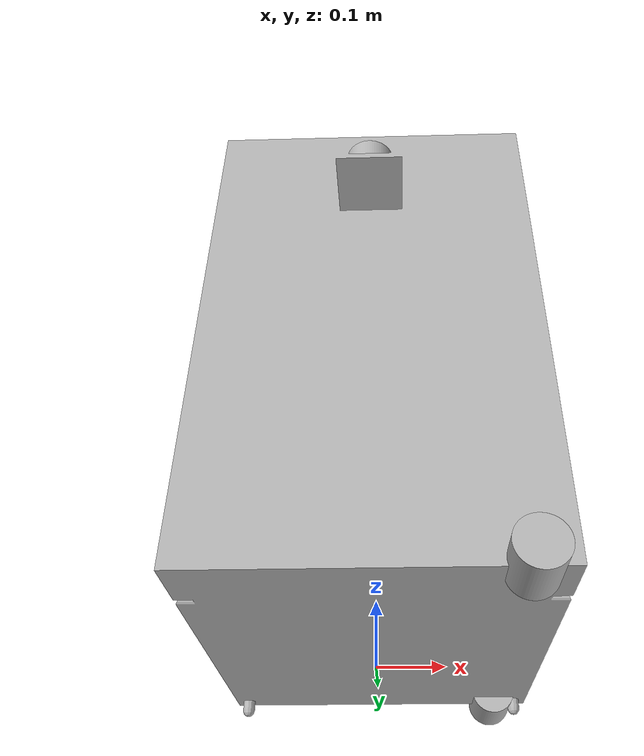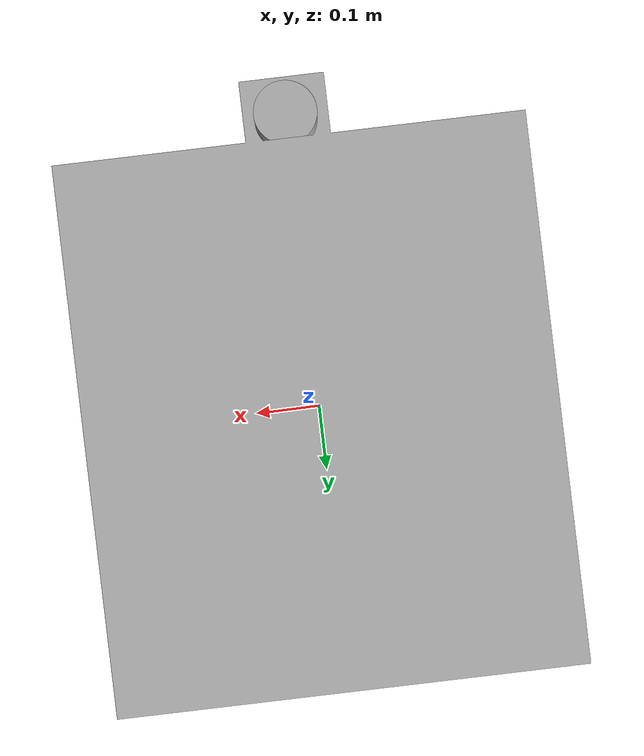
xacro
<?xml version="1.0" ?>
<robot name="waitress_simple_model" xmlns:xacro="http://www.ros.org/wiki/xacro">

<xacro:include filename="$(find waitress_simple_model_description)/urdf/materials.xacro" />
<xacro:include filename="$(find waitress_simple_model_description)/urdf/waitress_simple_model.trans" />
<xacro:include filename="$(find waitress_simple_model_description)/urdf/waitress_simple_model.gazebo" />

<link name="dummy">
  </link>

<joint name="dummy_joint" type="fixed">
  <parent link="dummy"/>
  <child link="base_link"/>
</joint>

<link name="base_link">
  <inertial>
    <origin xyz="0.00011071575072432313 -3.8859905316548345e-17 0.4305023814711941" rpy="0 0 0"/>
    <mass value="1881.3432897424466"/>
    <inertia ixx="142.501445" iyy="157.132903" izz="93.927415" ixy="0.0" iyz="0.0" ixz="-0.084286"/>
  </inertial>
  <visual>
    <origin xyz="0 0 0" rpy="0 0 0"/>
    <geometry>
      <mesh filename="package://waitress_simple_model_description/meshes/base_link.stl" scale="0.001 0.001 0.001"/>
    </geometry>
    <material name="silver"/>
  </visual>
  <collision>
    <origin xyz="0 0 0" rpy="0 0 0"/>
    <geometry>
      <mesh filename="package://waitress_simple_model_description/meshes/base_link.stl" scale="0.001 0.001 0.001"/>
    </geometry>
  </collision>
</link>

<link name="left_wheel_1">
  <inertial>
    <origin xyz="5.551115123125783e-17 0.04500000000000004 0.0" rpy="0 0 0"/>
    <mass value="2.718930631957457"/>
    <inertia ixx="0.002668" iyy="0.001665" izz="0.002668" ixy="0.0" iyz="0.0" ixz="-0.0"/>
  </inertial>
  <visual>
    <origin xyz="-0.195 -0.2515 -0.035" rpy="0 0 0"/>
    <geometry>
      <mesh filename="package://waitress_simple_model_description/meshes/left_wheel_1.stl" scale="0.001 0.001 0.001"/>
    </geometry>
    <material name="silver"/>
  </visual>
  <collision>
    <origin xyz="-0.195 -0.2515 -0.035" rpy="0 0 0"/>
    <geometry>
      <mesh filename="package://waitress_simple_model_description/meshes/left_wheel_1.stl" scale="0.001 0.001 0.001"/>
    </geometry>
  </collision>
</link>

<link name="right_wheel_1">
  <inertial>
    <origin xyz="0.0 -0.045000000000000095 0.0" rpy="0 0 0"/>
    <mass value="2.7189306319574555"/>
    <inertia ixx="0.002668" iyy="0.001665" izz="0.002668" ixy="-0.0" iyz="0.0" ixz="0.0"/>
  </inertial>
  <visual>
    <origin xyz="-0.195 0.2515 -0.035" rpy="0 0 0"/>
    <geometry>
      <mesh filename="package://waitress_simple_model_description/meshes/right_wheel_1.stl" scale="0.001 0.001 0.001"/>
    </geometry>
    <material name="silver"/>
  </visual>
  <collision>
    <origin xyz="-0.195 0.2515 -0.035" rpy="0 0 0"/>
    <geometry>
      <mesh filename="package://waitress_simple_model_description/meshes/right_wheel_1.stl" scale="0.001 0.001 0.001"/>
    </geometry>
  </collision>
</link>

<link name="lidar_base_1">
  <inertial>
    <origin xyz="0.0 -7.105427357601002e-17 0.025000000000000022" rpy="0 0 0"/>
    <mass value="1.6427643240024135"/>
    <inertia ixx="0.000889" iyy="0.000889" izz="0.001094" ixy="0.0" iyz="0.0" ixz="0.0"/>
  </inertial>
  <visual>
    <origin xyz="-0.344 0.0 -0.655" rpy="0 0 0"/>
    <geometry>
      <mesh filename="package://waitress_simple_model_description/meshes/lidar_base_1.stl" scale="0.001 0.001 0.001"/>
    </geometry>
    <material name="silver"/>
  </visual>
  <collision>
    <origin xyz="-0.344 0.0 -0.655" rpy="0 0 0"/>
    <geometry>
      <mesh filename="package://waitress_simple_model_description/meshes/lidar_base_1.stl" scale="0.001 0.001 0.001"/>
    </geometry>
  </collision>
</link>

<joint name="left_wheel_joint" type="continuous">
  <origin xyz="0.195 0.2515 0.035" rpy="0 0 0"/>
  <parent link="base_link"/>
  <child link="left_wheel_1"/>
  <axis xyz="0.0 1.0 0.0"/>
</joint>

<joint name="right_wheel_joint" type="continuous">
  <origin xyz="0.195 -0.2515 0.035" rpy="0 0 0"/>
  <parent link="base_link"/>
  <child link="right_wheel_1"/>
  <axis xyz="0.0 1.0 0.0"/>
</joint>

<joint name="lidar_joint" type="fixed">
  <origin xyz="0.344 0.0 0.655" rpy="0 0 0"/>
  <parent link="base_link"/>
  <child link="lidar_base_1"/>
</joint>

</robot>

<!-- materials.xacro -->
<robot name="waitress_simple_model" xmlns:xacro="http://www.ros.org/wiki/xacro" >

<material name="silver">
  <color rgba="0.700 0.700 0.700 1.000"/>
</material>

</robot>

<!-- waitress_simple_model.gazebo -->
<robot name="waitress_simple_model" xmlns:xacro="http://www.ros.org/wiki/xacro" >

<xacro:property name="body_color" value="Gazebo/Silver" />

<gazebo>
  <plugin name="control" filename="libgazebo_ros_control.so"/>
</gazebo>
<gazebo reference="base_link">
  <material>${body_color}</material>
  <mu1>0.2</mu1>
  <mu2>0.2</mu2>
  <selfCollide>true</selfCollide>
  <gravity>true</gravity>
</gazebo>

<gazebo reference="right_wheel_1">
  <material>${body_color}</material>
  <mu1>0.2</mu1>
  <mu2>0.2</mu2>
  <selfCollide>true</selfCollide>
</gazebo>

<gazebo reference="left_wheel_1">
  <material>${body_color}</material>
  <mu1>0.2</mu1>
  <mu2>0.2</mu2>
  <selfCollide>true</selfCollide>
</gazebo>

<gazebo reference="lidar_base_1">
  <material>${body_color}</material>
  <mu1>0.2</mu1>
  <mu2>0.2</mu2>
  <selfCollide>true</selfCollide>
</gazebo>

</robot>
